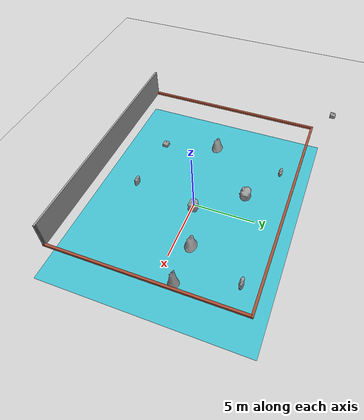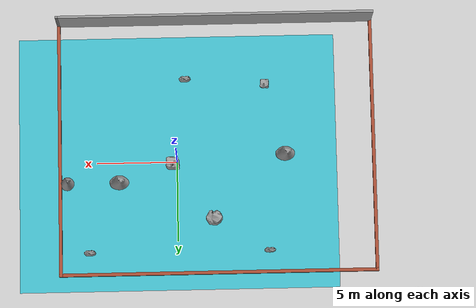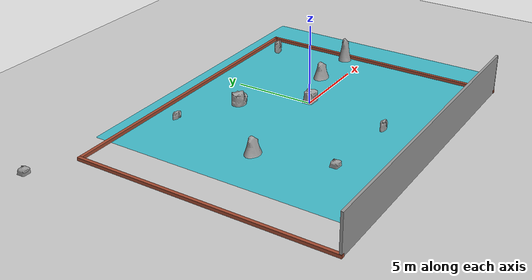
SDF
<sdf version="1.6">
 <world name="rectangle">
  <scene><ambient>0.4 0.4 0.4 1</ambient><background>0.7 0.7 0.7 1</background><shadows>1</shadows></scene>
  <light name="sun" type="directional">
   <pose>0 0 10 0 -0 0</pose>
   <diffuse>0.8 0.8 0.8 1</diffuse>
   <specular>0.1 0.1 0.1 1</specular>
   <attenuation>
    <range>1000</range>
    <constant>0.9</constant>
    <linear>0.01</linear>
    <quadratic>0.001</quadratic>
   </attenuation>
   <direction>-0.5 0.5 -1</direction>
  </light>
  <model name="ground_plane">
   <static>1</static>
   <link name="link">
    <collision name="collision">
     <geometry><plane><normal>0 0 1</normal><size>100 100</size></plane></geometry>
     <surface><friction><ode><mu>100</mu><mu2>50</mu2></ode></friction></surface>
    </collision>
    <visual name="visual">
     <cast_shadows>0</cast_shadows>
     <geometry><plane><normal>0 0 1</normal><size>100 100</size></plane></geometry>
     <material>
      <script><uri>file://media/materials/scripts/gazebo.material</uri><name>Gazebo/Grey</name></script>
     </material>
    </visual>
   </link>
  </model>
  <physics name="default_physics" default="0" type="ode">
   <real_time_update_rate>1000</real_time_update_rate>
   <max_step_size>0.001</max_step_size>
   <real_time_factor>1</real_time_factor>
   <ode>
    <solver>
     <type>quick</type>
     <iters>150</iters>
     <precon_iters>0</precon_iters>
     <sor>1.4</sor>
     <use_dynamic_moi_rescaling>1</use_dynamic_moi_rescaling>
    </solver>
    <constraints>
     <cfm>1e-05</cfm>
     <erp>0.2</erp>
     <contact_max_correcting_vel>2000</contact_max_correcting_vel>
     <contact_surface_layer>0.01</contact_surface_layer>
    </constraints>
   </ode>
  </physics>
  <gravity>0 0 -9.8</gravity>
  <magnetic_field>6e-06 2.3e-05 -4.2e-05</magnetic_field>
  <atmosphere type="adiabatic"/>
  <spherical_coordinates>
   <surface_model>EARTH_WGS84</surface_model>
   <latitude_deg>0</latitude_deg>
   <longitude_deg>0</longitude_deg>
   <elevation>0</elevation>
   <heading_deg>0</heading_deg>
  </spherical_coordinates>
  <model name="rectangle">
   <pose>-2.491 -0.932 0 0 -0 0</pose>
   <link name="Wall_0">
    <collision name="Wall_0_Collision">
     <geometry><box><size>19.75 0.15 2.5</size></box></geometry>
     <pose>0 0 1.25 0 -0 0</pose>
    </collision>
    <visual name="Wall_0_Visual">
     <pose>0 0 1.25 0 -0 0</pose>
     <geometry><box><size>19.75 0.15 2.5</size></box></geometry>
     <material>
      <script><uri>file://media/materials/scripts/gazebo.material</uri><name>Gazebo/Grey</name></script>
      <ambient>1 1 1 1</ambient>
     </material>
     <meta><layer>0</layer></meta>
    </visual>
    <pose>0 -7.925 0 0 -0 3.14159</pose>
   </link>
   <link name="Wall_1">
    <collision name="Wall_1_Collision">
     <geometry><box><size>16.05 0.2 0.2</size></box></geometry>
     <pose>0 0 0.1 0 -0 0</pose>
    </collision>
    <visual name="Wall_1_Visual">
     <pose>0 0 0.1 0 -0 0</pose>
     <geometry><box><size>16.05 0.2 0.2</size></box></geometry>
     <material>
      <script><uri>file://media/materials/scripts/gazebo.material</uri><name>Gazebo/Bricks</name></script>
      <ambient>0.760784 0.662745 0.627451 1</ambient>
     </material>
     <meta><layer>0</layer></meta>
    </visual>
    <pose>-9.8 0 0 0 -0 1.5708</pose>
   </link>
   <link name="Wall_2">
    <collision name="Wall_2_Collision">
     <geometry><box><size>19.7997 0.2 0.2</size></box></geometry>
     <pose>0 0 0.1 0 -0 0</pose>
    </collision>
    <visual name="Wall_2_Visual">
     <pose>0 0 0.1 0 -0 0</pose>
     <geometry><box><size>19.7997 0.2 0.2</size></box></geometry>
     <material>
      <script><uri>file://media/materials/scripts/gazebo.material</uri><name>Gazebo/Bricks</name></script>
      <ambient>0.760784 0.662745 0.627451 1</ambient>
     </material>
     <meta><layer>0</layer></meta>
    </visual>
    <pose>0 7.925 0 0 -0 0</pose>
   </link>
   <link name="Wall_3">
    <collision name="Wall_3_Collision">
     <geometry><box><size>16.0501 0.2 0.2</size></box></geometry>
     <pose>0 0 0.1 0 -0 0</pose>
    </collision>
    <visual name="Wall_3_Visual">
     <pose>0 0 0.1 0 -0 0</pose>
     <geometry><box><size>16.0501 0.2 0.2</size></box></geometry>
     <material>
      <script><uri>file://media/materials/scripts/gazebo.material</uri><name>Gazebo/Bricks</name></script>
      <ambient>0.760784 0.662745 0.627451 1</ambient>
     </material>
     <meta><layer>0</layer></meta>
    </visual>
    <pose>9.8 0 0 0 0 -1.5708</pose>
   </link>
   <link name="Wall_4">
    <collision name="Wall_4_Collision">
     <geometry><box><size>0.16 0.15 2.5</size></box></geometry>
     <pose>0 0 1.25 0 -0 0</pose>
    </collision>
    <visual name="Wall_4_Visual">
     <pose>0 0 1.25 0 -0 0</pose>
     <geometry><box><size>0.16 0.15 2.5</size></box></geometry>
     <material>
      <script><uri>file://media/materials/scripts/gazebo.material</uri><name>Gazebo/Grey</name></script>
      <ambient>1 1 1 1</ambient>
     </material>
     <meta><layer>0</layer></meta>
    </visual>
    <pose>9.80486 -7.92504 0 0 0 -0.008574</pose>
   </link>
   <static>1</static>
  </model>
  <model name="rectangle_v3">
   <link name="link_0">
    <pose>7.46151 5.80445 0.221171 0 -0 0</pose>
    <inertial>
     <mass>1</mass>
     <inertia>
      <ixx>0.166667</ixx>
      <ixy>0</ixy>
      <ixz>0</ixz>
      <iyy>0.166667</iyy>
      <iyz>0</iyz>
      <izz>0.166667</izz>
     </inertia>
    </inertial>
    <visual name="visual">
     <geometry>
      <mesh>
       <uri>/home/ubuntu16/catkin_ws/src/project_autoracs/materials/meshes/rock_1m.dae</uri>
       <scale>1 1 1</scale>
      </mesh>
     </geometry>
     <material>
      <lighting>1</lighting>
      <script><uri>file://media/materials/scripts/gazebo.material</uri><name>Gazebo/Grey</name></script>
      <shader type="pixel"/>
      <ambient>0.3 0.3 0.3 1</ambient>
      <diffuse>0.7 0.7 0.7 1</diffuse>
      <specular>0.01 0.01 0.01 1</specular>
      <emissive>0 0 0 1</emissive>
     </material>
    </visual>
    <collision name="collision">
     <geometry>
      <mesh>
       <uri>/home/ubuntu16/catkin_ws/src/project_autoracs/materials/meshes/rock_1m.dae</uri>
       <scale>1 1 1</scale>
      </mesh>
     </geometry>
     <surface>
      <friction>
       <ode><mu>1</mu><mu2>1</mu2><fdir1>0 0 0</fdir1><slip1>0</slip1><slip2>0</slip2></ode>
       <torsional>
        <coefficient>1</coefficient>
        <patch_radius>0</patch_radius>
        <surface_radius>0</surface_radius>
        <use_patch_radius>1</use_patch_radius>
        <ode><slip>0</slip></ode>
       </torsional>
      </friction>
      <bounce><restitution_coefficient>0</restitution_coefficient><threshold>1e+06</threshold></bounce>
      <contact>
       <collide_without_contact>0</collide_without_contact>
       <collide_without_contact_bitmask>1</collide_without_contact_bitmask>
       <collide_bitmask>1</collide_bitmask>
       <ode>
        <soft_cfm>0</soft_cfm>
        <soft_erp>0.2</soft_erp>
        <kp>1e+13</kp>
        <kd>1</kd>
        <max_vel>0.01</max_vel>
        <min_depth>0</min_depth>
       </ode>
       <bullet>
        <split_impulse>1</split_impulse>
        <split_impulse_penetration_threshold>-0.01</split_impulse_penetration_threshold>
        <soft_cfm>0</soft_cfm>
        <soft_erp>0.2</soft_erp>
        <kp>1e+13</kp>
        <kd>1</kd>
       </bullet>
      </contact>
     </surface>
    </collision>
   </link>
   <link name="link_1">
    <pose>-3.68566 5.77147 -0.237195 0 -0 0</pose>
    <inertial>
     <mass>1</mass>
     <inertia>
      <ixx>0.166667</ixx>
      <ixy>0</ixy>
      <ixz>0</ixz>
      <iyy>0.166667</iyy>
      <iyz>0</iyz>
      <izz>0.166667</izz>
     </inertia>
    </inertial>
    <visual name="visual">
     <geometry>
      <mesh>
       <uri>/home/ubuntu16/catkin_ws/src/project_autoracs/materials/meshes/rock_07.dae</uri>
       <scale>1 1 1</scale>
      </mesh>
     </geometry>
     <material>
      <lighting>1</lighting>
      <script><uri>file://media/materials/scripts/gazebo.material</uri><name>Gazebo/Grey</name></script>
      <shader type="pixel"/>
      <ambient>0.3 0.3 0.3 1</ambient>
      <diffuse>0.7 0.7 0.7 1</diffuse>
      <specular>0.01 0.01 0.01 1</specular>
      <emissive>0 0 0 1</emissive>
     </material>
    </visual>
    <collision name="collision">
     <geometry>
      <mesh>
       <uri>/home/ubuntu16/catkin_ws/src/project_autoracs/materials/meshes/rock_07.dae</uri>
       <scale>1 1 1</scale>
      </mesh>
     </geometry>
     <surface>
      <friction>
       <ode><mu>1</mu><mu2>1</mu2><fdir1>0 0 0</fdir1><slip1>0</slip1><slip2>0</slip2></ode>
       <torsional>
        <coefficient>1</coefficient>
        <patch_radius>0</patch_radius>
        <surface_radius>0</surface_radius>
        <use_patch_radius>1</use_patch_radius>
        <ode><slip>0</slip></ode>
       </torsional>
      </friction>
      <bounce><restitution_coefficient>0</restitution_coefficient><threshold>1e+06</threshold></bounce>
      <contact>
       <collide_without_contact>0</collide_without_contact>
       <collide_without_contact_bitmask>1</collide_without_contact_bitmask>
       <collide_bitmask>1</collide_bitmask>
       <ode>
        <soft_cfm>0</soft_cfm>
        <soft_erp>0.2</soft_erp>
        <kp>1e+13</kp>
        <kd>1</kd>
        <max_vel>0.01</max_vel>
        <min_depth>0</min_depth>
       </ode>
       <bullet>
        <split_impulse>1</split_impulse>
        <split_impulse_penetration_threshold>-0.01</split_impulse_penetration_threshold>
        <soft_cfm>0</soft_cfm>
        <soft_erp>0.2</soft_erp>
        <kp>1e+13</kp>
        <kd>1</kd>
       </bullet>
      </contact>
     </surface>
    </collision>
   </link>
   <link name="link_1_clone">
    <pose>1.42302 -5.11186 -0.034363 0 -0 0</pose>
    <inertial>
     <mass>1</mass>
     <inertia>
      <ixx>0.166667</ixx>
      <ixy>0</ixy>
      <ixz>0</ixz>
      <iyy>0.166667</iyy>
      <iyz>0</iyz>
      <izz>0.166667</izz>
     </inertia>
    </inertial>
    <visual name="visual">
     <geometry>
      <mesh>
       <uri>/home/ubuntu16/catkin_ws/src/project_autoracs/materials/meshes/rock_07.dae</uri>
       <scale>1 1 1</scale>
      </mesh>
     </geometry>
     <material>
      <lighting>1</lighting>
      <script><uri>file://media/materials/scripts/gazebo.material</uri><name>Gazebo/Grey</name></script>
      <shader type="pixel"/>
      <ambient>0.3 0.3 0.3 1</ambient>
      <diffuse>0.7 0.7 0.7 1</diffuse>
      <specular>0.01 0.01 0.01 1</specular>
      <emissive>0 0 0 1</emissive>
     </material>
    </visual>
    <collision name="collision">
     <geometry>
      <mesh>
       <uri>/home/ubuntu16/catkin_ws/src/project_autoracs/materials/meshes/rock_07.dae</uri>
       <scale>1 1 1</scale>
      </mesh>
     </geometry>
     <surface>
      <friction>
       <ode><mu>1</mu><mu2>1</mu2><fdir1>0 0 0</fdir1><slip1>0</slip1><slip2>0</slip2></ode>
       <torsional>
        <coefficient>1</coefficient>
        <patch_radius>0</patch_radius>
        <surface_radius>0</surface_radius>
        <use_patch_radius>1</use_patch_radius>
        <ode><slip>0</slip></ode>
       </torsional>
      </friction>
      <bounce><restitution_coefficient>0</restitution_coefficient><threshold>1e+06</threshold></bounce>
      <contact>
       <collide_without_contact>0</collide_without_contact>
       <collide_without_contact_bitmask>1</collide_without_contact_bitmask>
       <collide_bitmask>1</collide_bitmask>
       <ode>
        <soft_cfm>0</soft_cfm>
        <soft_erp>0.2</soft_erp>
        <kp>1e+13</kp>
        <kd>1</kd>
        <max_vel>0.01</max_vel>
        <min_depth>0</min_depth>
       </ode>
       <bullet>
        <split_impulse>1</split_impulse>
        <split_impulse_penetration_threshold>-0.01</split_impulse_penetration_threshold>
        <soft_cfm>0</soft_cfm>
        <soft_erp>0.2</soft_erp>
        <kp>1e+13</kp>
        <kd>1</kd>
       </bullet>
      </contact>
     </surface>
    </collision>
   </link>
   <link name="link_2">
    <pose>8.84665 1.38516 0.448317 0 -0 0</pose>
    <inertial>
     <mass>1</mass>
     <inertia>
      <ixx>0.166667</ixx>
      <ixy>0</ixy>
      <ixz>0</ixz>
      <iyy>0.166667</iyy>
      <iyz>0</iyz>
      <izz>0.166667</izz>
     </inertia>
    </inertial>
    <visual name="visual">
     <geometry>
      <mesh>
       <uri>/home/ubuntu16/catkin_ws/src/project_autoracs/materials/meshes/rock_cone.dae</uri>
       <scale>1 1 1</scale>
      </mesh>
     </geometry>
     <material>
      <lighting>1</lighting>
      <script><uri>file://media/materials/scripts/gazebo.material</uri><name>Gazebo/Grey</name></script>
      <shader type="pixel"/>
      <ambient>0.3 0.3 0.3 1</ambient>
      <diffuse>0.7 0.7 0.7 1</diffuse>
      <specular>0.01 0.01 0.01 1</specular>
      <emissive>0 0 0 1</emissive>
     </material>
    </visual>
    <collision name="collision">
     <geometry>
      <mesh>
       <uri>/home/ubuntu16/catkin_ws/src/project_autoracs/materials/meshes/rock_cone.dae</uri>
       <scale>1 1 1</scale>
      </mesh>
     </geometry>
     <surface>
      <friction>
       <ode><mu>1</mu><mu2>1</mu2><fdir1>0 0 0</fdir1><slip1>0</slip1><slip2>0</slip2></ode>
       <torsional>
        <coefficient>1</coefficient>
        <patch_radius>0</patch_radius>
        <surface_radius>0</surface_radius>
        <use_patch_radius>1</use_patch_radius>
        <ode><slip>0</slip></ode>
       </torsional>
      </friction>
      <bounce><restitution_coefficient>0</restitution_coefficient><threshold>1e+06</threshold></bounce>
      <contact>
       <collide_without_contact>0</collide_without_contact>
       <collide_without_contact_bitmask>1</collide_without_contact_bitmask>
       <collide_bitmask>1</collide_bitmask>
       <ode>
        <soft_cfm>0</soft_cfm>
        <soft_erp>0.2</soft_erp>
        <kp>1e+13</kp>
        <kd>1</kd>
        <max_vel>0.01</max_vel>
        <min_depth>0</min_depth>
       </ode>
       <bullet>
        <split_impulse>1</split_impulse>
        <split_impulse_penetration_threshold>-0.01</split_impulse_penetration_threshold>
        <soft_cfm>0</soft_cfm>
        <soft_erp>0.2</soft_erp>
        <kp>1e+13</kp>
        <kd>1</kd>
       </bullet>
      </contact>
     </surface>
    </collision>
   </link>
   <link name="link_3">
    <pose>-3.58673 -4.7161 -0.237195 0 -0 0</pose>
    <inertial>
     <mass>1</mass>
     <inertia>
      <ixx>0.166667</ixx>
      <ixy>0</ixy>
      <ixz>0</ixz>
      <iyy>0.166667</iyy>
      <iyz>0</iyz>
      <izz>0.166667</izz>
     </inertia>
    </inertial>
    <visual name="visual">
     <geometry>
      <mesh>
       <uri>/home/ubuntu16/catkin_ws/src/project_autoracs/materials/meshes/rock_square.dae</uri>
       <scale>1 1 1</scale>
      </mesh>
     </geometry>
     <material>
      <lighting>1</lighting>
      <script><uri>file://media/materials/scripts/gazebo.material</uri><name>Gazebo/Grey</name></script>
      <shader type="pixel"/>
      <ambient>0.3 0.3 0.3 1</ambient>
      <diffuse>0.7 0.7 0.7 1</diffuse>
      <specular>0.01 0.01 0.01 1</specular>
      <emissive>0 0 0 1</emissive>
     </material>
    </visual>
    <collision name="collision">
     <geometry>
      <mesh>
       <uri>/home/ubuntu16/catkin_ws/src/project_autoracs/materials/meshes/rock_square.dae</uri>
       <scale>1 1 1</scale>
      </mesh>
     </geometry>
     <surface>
      <friction>
       <ode><mu>1</mu><mu2>1</mu2><fdir1>0 0 0</fdir1><slip1>0</slip1><slip2>0</slip2></ode>
       <torsional>
        <coefficient>1</coefficient>
        <patch_radius>0</patch_radius>
        <surface_radius>0</surface_radius>
        <use_patch_radius>1</use_patch_radius>
        <ode><slip>0</slip></ode>
       </torsional>
      </friction>
      <bounce><restitution_coefficient>0</restitution_coefficient><threshold>1e+06</threshold></bounce>
      <contact>
       <collide_without_contact>0</collide_without_contact>
       <collide_without_contact_bitmask>1</collide_without_contact_bitmask>
       <collide_bitmask>1</collide_bitmask>
       <ode>
        <soft_cfm>0</soft_cfm>
        <soft_erp>0.2</soft_erp>
        <kp>1e+13</kp>
        <kd>1</kd>
        <max_vel>0.01</max_vel>
        <min_depth>0</min_depth>
       </ode>
       <bullet>
        <split_impulse>1</split_impulse>
        <split_impulse_penetration_threshold>-0.01</split_impulse_penetration_threshold>
        <soft_cfm>0</soft_cfm>
        <soft_erp>0.2</soft_erp>
        <kp>1e+13</kp>
        <kd>1</kd>
       </bullet>
      </contact>
     </surface>
    </collision>
   </link>
   <link name="link_3_clone">
    <pose>-12.8286 8.6989 -0.237195 0 -0 0</pose>
    <inertial>
     <mass>1</mass>
     <inertia>
      <ixx>0.166667</ixx>
      <ixy>0</ixy>
      <ixz>0</ixz>
      <iyy>0.166667</iyy>
      <iyz>0</iyz>
      <izz>0.166667</izz>
     </inertia>
    </inertial>
    <visual name="visual">
     <geometry>
      <mesh>
       <uri>/home/ubuntu16/catkin_ws/src/project_autoracs/materials/meshes/rock_square.dae</uri>
       <scale>1 1 1</scale>
      </mesh>
     </geometry>
     <material>
      <lighting>1</lighting>
      <script><uri>file://media/materials/scripts/gazebo.material</uri><name>Gazebo/Grey</name></script>
      <shader type="pixel"/>
      <ambient>0.3 0.3 0.3 1</ambient>
      <diffuse>0.7 0.7 0.7 1</diffuse>
      <specular>0.01 0.01 0.01 1</specular>
      <emissive>0 0 0 1</emissive>
     </material>
    </visual>
    <collision name="collision">
     <geometry>
      <mesh>
       <uri>/home/ubuntu16/catkin_ws/src/project_autoracs/materials/meshes/rock_square.dae</uri>
       <scale>1 1 1</scale>
      </mesh>
     </geometry>
     <surface>
      <friction>
       <ode><mu>1</mu><mu2>1</mu2><fdir1>0 0 0</fdir1><slip1>0</slip1><slip2>0</slip2></ode>
       <torsional>
        <coefficient>1</coefficient>
        <patch_radius>0</patch_radius>
        <surface_radius>0</surface_radius>
        <use_patch_radius>1</use_patch_radius>
        <ode><slip>0</slip></ode>
       </torsional>
      </friction>
      <bounce><restitution_coefficient>0</restitution_coefficient><threshold>1e+06</threshold></bounce>
      <contact>
       <collide_without_contact>0</collide_without_contact>
       <collide_without_contact_bitmask>1</collide_without_contact_bitmask>
       <collide_bitmask>1</collide_bitmask>
       <ode>
        <soft_cfm>0</soft_cfm>
        <soft_erp>0.2</soft_erp>
        <kp>1e+13</kp>
        <kd>1</kd>
        <max_vel>0.01</max_vel>
        <min_depth>0</min_depth>
       </ode>
       <bullet>
        <split_impulse>1</split_impulse>
        <split_impulse_penetration_threshold>-0.01</split_impulse_penetration_threshold>
        <soft_cfm>0</soft_cfm>
        <soft_erp>0.2</soft_erp>
        <kp>1e+13</kp>
        <kd>1</kd>
       </bullet>
      </contact>
     </surface>
    </collision>
   </link>
   <link name="link_4">
    <pose>-0.258949 3.69375 0.012783 0 -0 0</pose>
    <inertial>
     <mass>1</mass>
     <inertia>
      <ixx>0.166667</ixx>
      <ixy>0</ixy>
      <ixz>0</ixz>
      <iyy>0.166667</iyy>
      <iyz>0</iyz>
      <izz>0.166667</izz>
     </inertia>
    </inertial>
    <visual name="visual">
     <geometry>
      <mesh>
       <uri>/home/ubuntu16/catkin_ws/src/project_autoracs/materials/meshes/rock_2.dae</uri>
       <scale>1 1 1</scale>
      </mesh>
     </geometry>
     <material>
      <lighting>1</lighting>
      <script><uri>file://media/materials/scripts/gazebo.material</uri><name>Gazebo/Grey</name></script>
      <shader type="pixel"/>
      <ambient>0.3 0.3 0.3 1</ambient>
      <diffuse>0.7 0.7 0.7 1</diffuse>
      <specular>0.01 0.01 0.01 1</specular>
      <emissive>0 0 0 1</emissive>
     </material>
    </visual>
    <collision name="collision">
     <geometry>
      <mesh>
       <uri>/home/ubuntu16/catkin_ws/src/project_autoracs/materials/meshes/rock_2.dae</uri>
       <scale>1 1 1</scale>
      </mesh>
     </geometry>
     <surface>
      <friction>
       <ode><mu>1</mu><mu2>1</mu2><fdir1>0 0 0</fdir1><slip1>0</slip1><slip2>0</slip2></ode>
       <torsional>
        <coefficient>1</coefficient>
        <patch_radius>0</patch_radius>
        <surface_radius>0</surface_radius>
        <use_patch_radius>1</use_patch_radius>
        <ode><slip>0</slip></ode>
       </torsional>
      </friction>
      <bounce><restitution_coefficient>0</restitution_coefficient><threshold>1e+06</threshold></bounce>
      <contact>
       <collide_without_contact>0</collide_without_contact>
       <collide_without_contact_bitmask>1</collide_without_contact_bitmask>
       <collide_bitmask>1</collide_bitmask>
       <ode>
        <soft_cfm>0</soft_cfm>
        <soft_erp>0.2</soft_erp>
        <kp>1e+13</kp>
        <kd>1</kd>
        <max_vel>0.01</max_vel>
        <min_depth>0</min_depth>
       </ode>
       <bullet>
        <split_impulse>1</split_impulse>
        <split_impulse_penetration_threshold>-0.01</split_impulse_penetration_threshold>
        <soft_cfm>0</soft_cfm>
        <soft_erp>0.2</soft_erp>
        <kp>1e+13</kp>
        <kd>1</kd>
       </bullet>
      </contact>
     </surface>
    </collision>
   </link>
   <link name="link_5">
    <pose>-4.77718 -0.296811 0.171117 0 -0 0</pose>
    <inertial>
     <mass>1</mass>
     <inertia>
      <ixx>0.166667</ixx>
      <ixy>0</ixy>
      <ixz>0</ixz>
      <iyy>0.166667</iyy>
      <iyz>0</iyz>
      <izz>0.166667</izz>
     </inertia>
    </inertial>
    <visual name="visual">
     <geometry>
      <mesh>
       <uri>/home/ubuntu16/catkin_ws/src/project_autoracs/materials/meshes/rock_cone2.dae</uri>
       <scale>1 1 1</scale>
      </mesh>
     </geometry>
     <material>
      <lighting>1</lighting>
      <script><uri>file://media/materials/scripts/gazebo.material</uri><name>Gazebo/Grey</name></script>
      <shader type="pixel"/>
      <ambient>0.3 0.3 0.3 1</ambient>
      <diffuse>0.7 0.7 0.7 1</diffuse>
      <specular>0.01 0.01 0.01 1</specular>
      <emissive>0 0 0 1</emissive>
     </material>
    </visual>
    <collision name="collision">
     <geometry>
      <mesh>
       <uri>/home/ubuntu16/catkin_ws/src/project_autoracs/materials/meshes/rock_cone2.dae</uri>
       <scale>1 1 1</scale>
      </mesh>
     </geometry>
     <surface>
      <friction>
       <ode><mu>1</mu><mu2>1</mu2><fdir1>0 0 0</fdir1><slip1>0</slip1><slip2>0</slip2></ode>
       <torsional>
        <coefficient>1</coefficient>
        <patch_radius>0</patch_radius>
        <surface_radius>0</surface_radius>
        <use_patch_radius>1</use_patch_radius>
        <ode><slip>0</slip></ode>
       </torsional>
      </friction>
      <bounce><restitution_coefficient>0</restitution_coefficient><threshold>1e+06</threshold></bounce>
      <contact>
       <collide_without_contact>0</collide_without_contact>
       <collide_without_contact_bitmask>1</collide_without_contact_bitmask>
       <collide_bitmask>1</collide_bitmask>
       <ode>
        <soft_cfm>0</soft_cfm>
        <soft_erp>0.2</soft_erp>
        <kp>1e+13</kp>
        <kd>1</kd>
        <max_vel>0.01</max_vel>
        <min_depth>0</min_depth>
       </ode>
       <bullet>
        <split_impulse>1</split_impulse>
        <split_impulse_penetration_threshold>-0.01</split_impulse_penetration_threshold>
        <soft_cfm>0</soft_cfm>
        <soft_erp>0.2</soft_erp>
        <kp>1e+13</kp>
        <kd>1</kd>
       </bullet>
      </contact>
     </surface>
    </collision>
   </link>
   <link name="link_5_clone">
    <pose>5.61146 1.35218 0.169632 0 -0 0</pose>
    <inertial>
     <mass>1</mass>
     <inertia>
      <ixx>0.166667</ixx>
      <ixy>0</ixy>
      <ixz>0</ixz>
      <iyy>0.166667</iyy>
      <iyz>0</iyz>
      <izz>0.166667</izz>
     </inertia>
    </inertial>
    <visual name="visual">
     <geometry>
      <mesh>
       <uri>/home/ubuntu16/catkin_ws/src/project_autoracs/materials/meshes/rock_cone2.dae</uri>
       <scale>1 1 1</scale>
      </mesh>
     </geometry>
     <material>
      <lighting>1</lighting>
      <script><uri>file://media/materials/scripts/gazebo.material</uri><name>Gazebo/Grey</name></script>
      <shader type="pixel"/>
      <ambient>0.3 0.3 0.3 1</ambient>
      <diffuse>0.7 0.7 0.7 1</diffuse>
      <specular>0.01 0.01 0.01 1</specular>
      <emissive>0 0 0 1</emissive>
     </material>
    </visual>
    <collision name="collision">
     <geometry>
      <mesh>
       <uri>/home/ubuntu16/catkin_ws/src/project_autoracs/materials/meshes/rock_cone2.dae</uri>
       <scale>1 1 1</scale>
      </mesh>
     </geometry>
     <surface>
      <friction>
       <ode><mu>1</mu><mu2>1</mu2><fdir1>0 0 0</fdir1><slip1>0</slip1><slip2>0</slip2></ode>
       <torsional>
        <coefficient>1</coefficient>
        <patch_radius>0</patch_radius>
        <surface_radius>0</surface_radius>
        <use_patch_radius>1</use_patch_radius>
        <ode><slip>0</slip></ode>
       </torsional>
      </friction>
      <bounce><restitution_coefficient>0</restitution_coefficient><threshold>1e+06</threshold></bounce>
      <contact>
       <collide_without_contact>0</collide_without_contact>
       <collide_without_contact_bitmask>1</collide_without_contact_bitmask>
       <collide_bitmask>1</collide_bitmask>
       <ode>
        <soft_cfm>0</soft_cfm>
        <soft_erp>0.2</soft_erp>
        <kp>1e+13</kp>
        <kd>1</kd>
        <max_vel>0.01</max_vel>
        <min_depth>0</min_depth>
       </ode>
       <bullet>
        <split_impulse>1</split_impulse>
        <split_impulse_penetration_threshold>-0.01</split_impulse_penetration_threshold>
        <soft_cfm>0</soft_cfm>
        <soft_erp>0.2</soft_erp>
        <kp>1e+13</kp>
        <kd>1</kd>
       </bullet>
      </contact>
     </surface>
    </collision>
   </link>
   <link name="link_6">
    <pose>2.23352 0.263301 -0.039874 0 -0 0</pose>
    <inertial>
     <mass>1</mass>
     <inertia>
      <ixx>0.166667</ixx>
      <ixy>0</ixy>
      <ixz>0</ixz>
      <iyy>0.166667</iyy>
      <iyz>0</iyz>
      <izz>0.166667</izz>
     </inertia>
    </inertial>
    <visual name="visual">
     <geometry>
      <mesh>
       <uri>/home/ubuntu16/catkin_ws/src/project_autoracs/materials/meshes/rock_square2.dae</uri>
       <scale>1 1 1</scale>
      </mesh>
     </geometry>
     <material>
      <lighting>1</lighting>
      <script><uri>file://media/materials/scripts/gazebo.material</uri><name>Gazebo/Grey</name></script>
      <shader type="pixel"/>
      <ambient>0.3 0.3 0.3 1</ambient>
      <diffuse>0.7 0.7 0.7 1</diffuse>
      <specular>0.01 0.01 0.01 1</specular>
      <emissive>0 0 0 1</emissive>
     </material>
    </visual>
    <collision name="collision">
     <geometry>
      <mesh>
       <uri>/home/ubuntu16/catkin_ws/src/project_autoracs/materials/meshes/rock_square2.dae</uri>
       <scale>1 1 1</scale>
      </mesh>
     </geometry>
     <surface>
      <friction>
       <ode><mu>1</mu><mu2>1</mu2><fdir1>0 0 0</fdir1><slip1>0</slip1><slip2>0</slip2></ode>
       <torsional>
        <coefficient>1</coefficient>
        <patch_radius>0</patch_radius>
        <surface_radius>0</surface_radius>
        <use_patch_radius>1</use_patch_radius>
        <ode><slip>0</slip></ode>
       </torsional>
      </friction>
      <bounce><restitution_coefficient>0</restitution_coefficient><threshold>1e+06</threshold></bounce>
      <contact>
       <collide_without_contact>0</collide_without_contact>
       <collide_without_contact_bitmask>1</collide_without_contact_bitmask>
       <collide_bitmask>1</collide_bitmask>
       <ode>
        <soft_cfm>0</soft_cfm>
        <soft_erp>0.2</soft_erp>
        <kp>1e+13</kp>
        <kd>1</kd>
        <max_vel>0.01</max_vel>
        <min_depth>0</min_depth>
       </ode>
       <bullet>
        <split_impulse>1</split_impulse>
        <split_impulse_penetration_threshold>-0.01</split_impulse_penetration_threshold>
        <soft_cfm>0</soft_cfm>
        <soft_erp>0.2</soft_erp>
        <kp>1e+13</kp>
        <kd>1</kd>
       </bullet>
      </contact>
     </surface>
    </collision>
   </link>
   <model name="water">
    <pose>1.91919 0.164931 -0.237195 0 -0 0</pose>
    <static>1</static>
    <link name="body">
     <visual name="visual">
      <geometry><mesh><uri>model://water/media/water.dae</uri></mesh></geometry>
      <material>
       <script>
        <uri>model://water/media/scripts</uri>
        <uri>model://water/media/Textures</uri>
        <name>RepeatedWater/Diffuse</name>
       </script>
      </material>
     </visual>
     <collision name="collision">
      <geometry><mesh><uri>model://water/media/water.dae</uri></mesh></geometry>
     </collision>
    </link>
   </model>
   <static>0</static>
   <pose>-1.97661 -0.135675 0.237195 0 -0 0</pose>
  </model>
 </world>
</sdf>
